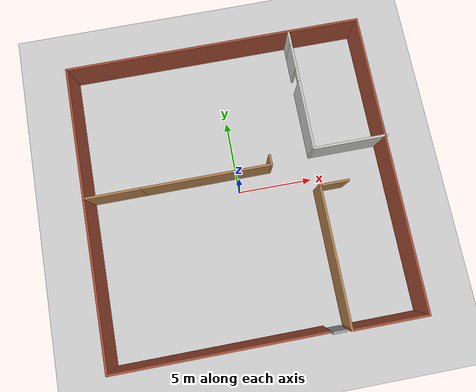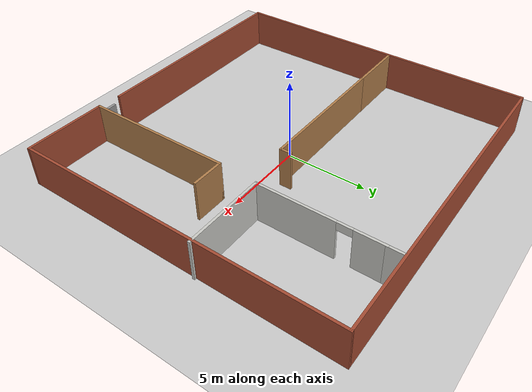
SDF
<sdf version="1.7">
 <world name="default">
  <light name="sun" type="directional">
   <pose>0 0 10 0 -0 0</pose>
   <diffuse>0.8 0.8 0.8 1</diffuse>
   <specular>0.2 0.2 0.2 1</specular>
   <attenuation>
    <range>1000</range>
    <constant>0.9</constant>
    <linear>0.01</linear>
    <quadratic>0.001</quadratic>
   </attenuation>
   <direction>-0.5 0.1 -0.9</direction>
   <spot><inner_angle>0</inner_angle><outer_angle>0</outer_angle><falloff>0</falloff></spot>
  </light>
  <model name="ground_plane">
   <static>1</static>
   <link name="link">
    <collision name="collision">
     <geometry><plane><normal>0 0 1</normal><size>100 100</size></plane></geometry>
     <surface><friction><ode><mu>100</mu><mu2>50</mu2></ode></friction></surface>
    </collision>
    <visual name="visual">
     <cast_shadows>0</cast_shadows>
     <geometry><plane><normal>0 0 1</normal><size>100 100</size></plane></geometry>
     <material>
      <script><uri>file://media/materials/scripts/gazebo.material</uri><name>Gazebo/Grey</name></script>
     </material>
    </visual>
   </link>
  </model>
  <gravity>0 0 -9.8</gravity>
  <magnetic_field>6e-06 2.3e-05 -4.2e-05</magnetic_field>
  <atmosphere type="adiabatic"/>
  <physics type="ode">
   <max_step_size>0.001</max_step_size>
   <real_time_factor>1</real_time_factor>
   <real_time_update_rate>1000</real_time_update_rate>
  </physics>
  <scene><ambient>0.4 0.4 0.4 1</ambient><background>0.7 0.7 0.7 1</background><shadows>1</shadows></scene>
  <audio><device>default</device></audio>
  <spherical_coordinates>
   <surface_model>EARTH_WGS84</surface_model>
   <latitude_deg>0</latitude_deg>
   <longitude_deg>0</longitude_deg>
   <elevation>0</elevation>
   <heading_deg>0</heading_deg>
  </spherical_coordinates>
  <model name="basic_world">
   <pose>0.085661 -0.019466 0 0 -0 0</pose>
   <link name="Door_0">
    <collision name="Door_0_Collision">
     <geometry><box><size>0.9 0.17 2</size></box></geometry>
     <pose>0 0 1 0 -0 0</pose>
    </collision>
    <visual name="Door_0_Visual">
     <pose>0 0 1 0 -0 0</pose>
     <geometry><box><size>0.9 0.17 2</size></box></geometry>
     <material>
      <script><uri>file://media/materials/scripts/gazebo.material</uri><name>Gazebo/Grey</name></script>
     </material>
    </visual>
    <pose>4.35533 -9.96223 0 0 -0 0</pose>
   </link>
   <link name="Wall_0">
    <collision name="Wall_0_Collision">
     <geometry><box><size>3.75 0.15 2.5</size></box></geometry>
     <pose>0 0 1.25 0 -0 0</pose>
    </collision>
    <visual name="Wall_0_Visual">
     <pose>0 0 1.25 0 -0 0</pose>
     <geometry><box><size>3.75 0.15 2.5</size></box></geometry>
     <material>
      <script><uri>file://media/materials/scripts/gazebo.material</uri><name>Gazebo/Wood</name></script>
      <ambient>1 1 1 1</ambient>
     </material>
     <meta><layer>0</layer></meta>
    </visual>
    <pose>-8.18472 1.075 0 0 -0 3.14159</pose>
   </link>
   <link name="Wall_1">
    <collision name="Wall_1_Collision">
     <geometry><box><size>11 0.15 2.5</size></box></geometry>
     <pose>0 0 1.25 0 -0 0</pose>
    </collision>
    <visual name="Wall_1_Visual">
     <pose>0 0 1.25 0 -0 0</pose>
     <geometry><box><size>11 0.15 2.5</size></box></geometry>
     <material>
      <script><uri>file://media/materials/scripts/gazebo.material</uri><name>Gazebo/Bricks</name></script>
      <ambient>1 1 1 1</ambient>
     </material>
     <meta><layer>0</layer></meta>
    </visual>
    <pose>-9.98472 -4.35 0 0 -0 -1.5708</pose>
   </link>
   <link name="Wall_11">
    <collision name="Wall_11_Collision">
     <geometry><box><size>5 0.15 2.5</size></box></geometry>
     <pose>0 0 1.25 0 -0 0</pose>
    </collision>
    <visual name="Wall_11_Visual">
     <pose>0 0 1.25 0 -0 0</pose>
     <geometry><box><size>5 0.15 2.5</size></box></geometry>
     <material>
      <script><uri>file://media/materials/scripts/gazebo.material</uri><name>Gazebo/CeilingTiled</name></script>
      <ambient>0.435294 0.796078 0.67451 1</ambient>
     </material>
     <meta><layer>0</layer></meta>
    </visual>
    <pose>7.55972 1.62222 0 0 -0 3.14159</pose>
   </link>
   <link name="Wall_12">
    <pose>5.13472 5.29722 0 0 -0 1.5708</pose>
    <visual name="Wall_12_Visual_0">
     <pose>-1.3529 0 1.25 0 -0 0</pose>
     <geometry><box><size>4.79419 0.15 2.5</size></box></geometry>
     <material>
      <script><uri>file://media/materials/scripts/gazebo.material</uri><name>Gazebo/CeilingTiled</name></script>
      <ambient>0.435294 0.796078 0.67451 1</ambient>
     </material>
     <meta><layer>0</layer></meta>
    </visual>
    <collision name="Wall_12_Collision_0">
     <geometry><box><size>4.79419 0.15 2.5</size></box></geometry>
     <pose>-1.3529 0 1.25 0 -0 0</pose>
    </collision>
    <visual name="Wall_12_Visual_1">
     <pose>2.8471 0 1.25 0 -0 0</pose>
     <geometry><box><size>1.80581 0.15 2.5</size></box></geometry>
     <material>
      <script><uri>file://media/materials/scripts/gazebo.material</uri><name>Gazebo/CeilingTiled</name></script>
      <ambient>0.435294 0.796078 0.67451 1</ambient>
     </material>
     <meta><layer>0</layer></meta>
    </visual>
    <collision name="Wall_12_Collision_1">
     <geometry><box><size>1.80581 0.15 2.5</size></box></geometry>
     <pose>2.8471 0 1.25 0 -0 0</pose>
    </collision>
    <visual name="Wall_12_Visual_2">
     <pose>1.49419 0 2.25 0 -0 0</pose>
     <geometry><box><size>0.9 0.15 0.5</size></box></geometry>
     <material>
      <script><uri>file://media/materials/scripts/gazebo.material</uri><name>Gazebo/CeilingTiled</name></script>
      <ambient>0.435294 0.796078 0.67451 1</ambient>
     </material>
     <meta><layer>0</layer></meta>
    </visual>
    <collision name="Wall_12_Collision_2">
     <geometry><box><size>0.9 0.15 0.5</size></box></geometry>
     <pose>1.49419 0 2.25 0 -0 0</pose>
    </collision>
   </link>
   <link name="Wall_2">
    <collision name="Wall_2_Collision">
     <geometry><box><size>13.75 0.15 2.5</size></box></geometry>
     <pose>0 0 1.25 0 -0 0</pose>
    </collision>
    <visual name="Wall_2_Visual">
     <pose>0 0 1.25 0 -0 0</pose>
     <geometry><box><size>13.75 0.15 2.5</size></box></geometry>
     <material>
      <script><uri>file://media/materials/scripts/gazebo.material</uri><name>Gazebo/Bricks</name></script>
      <ambient>1 1 1 1</ambient>
     </material>
     <meta><layer>0</layer></meta>
    </visual>
    <pose>-3.18472 -9.775 0 0 -0 0</pose>
   </link>
   <link name="Wall_36">
    <collision name="Wall_36_Collision">
     <geometry><box><size>1 0.15 2.5</size></box></geometry>
     <pose>0 0 1.25 0 -0 0</pose>
    </collision>
    <visual name="Wall_36_Visual">
     <pose>0 0 1.25 0 -0 0</pose>
     <geometry><box><size>1 0.15 2.5</size></box></geometry>
     <material>
      <script><uri>file://media/materials/scripts/gazebo.material</uri><name>Gazebo/CeilingTiled</name></script>
      <ambient>0.435294 0.796078 0.67451 1</ambient>
     </material>
     <meta><layer>0</layer></meta>
    </visual>
    <pose>5.13472 9.39722 0 0 -0 1.5708</pose>
   </link>
   <link name="Wall_38">
    <collision name="Wall_38_Collision">
     <geometry><box><size>8.75 0.15 2.5</size></box></geometry>
     <pose>0 0 1.25 0 -0 0</pose>
    </collision>
    <visual name="Wall_38_Visual">
     <pose>0 0 1.25 0 -0 0</pose>
     <geometry><box><size>8.75 0.15 2.5</size></box></geometry>
     <material>
      <script><uri>file://media/materials/scripts/gazebo.material</uri><name>Gazebo/Wood</name></script>
      <ambient>1 1 1 1</ambient>
     </material>
     <meta><layer>0</layer></meta>
    </visual>
    <pose>-2.08472 1.075 0 0 -0 0</pose>
   </link>
   <link name="Wall_39">
    <collision name="Wall_39_Collision">
     <geometry><box><size>0.75 0.15 2.5</size></box></geometry>
     <pose>0 0 1.25 0 -0 0</pose>
    </collision>
    <visual name="Wall_39_Visual">
     <pose>0 0 1.25 0 -0 0</pose>
     <geometry><box><size>0.75 0.15 2.5</size></box></geometry>
     <material>
      <script><uri>file://media/materials/scripts/gazebo.material</uri><name>Gazebo/Wood</name></script>
      <ambient>1 1 1 1</ambient>
     </material>
     <meta><layer>0</layer></meta>
    </visual>
    <pose>2.21528 1.375 0 0 -0 1.5708</pose>
   </link>
   <link name="Wall_4">
    <collision name="Wall_4_Collision">
     <geometry><box><size>9 0.15 2.5</size></box></geometry>
     <pose>0 0 1.25 0 -0 0</pose>
    </collision>
    <visual name="Wall_4_Visual">
     <pose>0 0 1.25 0 -0 0</pose>
     <geometry><box><size>9 0.15 2.5</size></box></geometry>
     <material>
      <script><uri>file://media/materials/scripts/gazebo.material</uri><name>Gazebo/Bricks</name></script>
      <ambient>1 1 1 1</ambient>
     </material>
     <meta><layer>0</layer></meta>
    </visual>
    <pose>-9.98472 5.5 0 0 -0 1.5708</pose>
   </link>
   <link name="Wall_5">
    <collision name="Wall_5_Collision">
     <geometry><box><size>20 0.15 2.5</size></box></geometry>
     <pose>0 0 1.25 0 -0 0</pose>
    </collision>
    <visual name="Wall_5_Visual">
     <pose>0 0 1.25 0 -0 0</pose>
     <geometry><box><size>20 0.15 2.5</size></box></geometry>
     <material>
      <script><uri>file://media/materials/scripts/gazebo.material</uri><name>Gazebo/Bricks</name></script>
      <ambient>1 1 1 1</ambient>
     </material>
     <meta><layer>0</layer></meta>
    </visual>
    <pose>-0.059721 9.925 0 0 -0 0</pose>
   </link>
   <link name="Wall_6">
    <collision name="Wall_6_Collision">
     <geometry><box><size>20 0.15 2.5</size></box></geometry>
     <pose>0 0 1.25 0 -0 0</pose>
    </collision>
    <visual name="Wall_6_Visual">
     <pose>0 0 1.25 0 -0 0</pose>
     <geometry><box><size>20 0.15 2.5</size></box></geometry>
     <material>
      <script><uri>file://media/materials/scripts/gazebo.material</uri><name>Gazebo/Bricks</name></script>
      <ambient>1 1 1 1</ambient>
     </material>
     <meta><layer>0</layer></meta>
    </visual>
    <pose>9.86528 0 0 0 -0 -1.5708</pose>
   </link>
   <link name="Wall_7">
    <collision name="Wall_7_Collision">
     <geometry><box><size>5 0.15 2.5</size></box></geometry>
     <pose>0 0 1.25 0 -0 0</pose>
    </collision>
    <visual name="Wall_7_Visual">
     <pose>0 0 1.25 0 -0 0</pose>
     <geometry><box><size>5 0.15 2.5</size></box></geometry>
     <material>
      <script><uri>file://media/materials/scripts/gazebo.material</uri><name>Gazebo/Bricks</name></script>
      <ambient>1 1 1 1</ambient>
     </material>
     <meta><layer>0</layer></meta>
    </visual>
    <pose>7.44028 -9.925 0 0 -0 3.14159</pose>
   </link>
   <link name="Wall_8">
    <collision name="Wall_8_Collision">
     <geometry><box><size>9.25 0.15 2.5</size></box></geometry>
     <pose>0 0 1.25 0 -0 0</pose>
    </collision>
    <visual name="Wall_8_Visual">
     <pose>0 0 1.25 0 -0 0</pose>
     <geometry><box><size>9.25 0.15 2.5</size></box></geometry>
     <material>
      <script><uri>file://media/materials/scripts/gazebo.material</uri><name>Gazebo/Wood</name></script>
      <ambient>1 1 1 1</ambient>
     </material>
     <meta><layer>0</layer></meta>
    </visual>
    <pose>5.01528 -5.375 0 0 -0 1.5708</pose>
   </link>
   <link name="Wall_9">
    <collision name="Wall_9_Collision">
     <geometry><box><size>2 0.15 2.5</size></box></geometry>
     <pose>0 0 1.25 0 -0 0</pose>
    </collision>
    <visual name="Wall_9_Visual">
     <pose>0 0 1.25 0 -0 0</pose>
     <geometry><box><size>2 0.15 2.5</size></box></geometry>
     <material>
      <script><uri>file://media/materials/scripts/gazebo.material</uri><name>Gazebo/Wood</name></script>
      <ambient>1 1 1 1</ambient>
     </material>
     <meta><layer>0</layer></meta>
    </visual>
    <pose>5.94028 -0.825 0 0 -0 0</pose>
   </link>
   <static>1</static>
  </model>
 </world>
</sdf>
